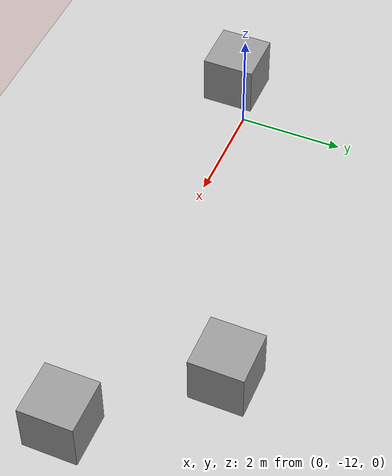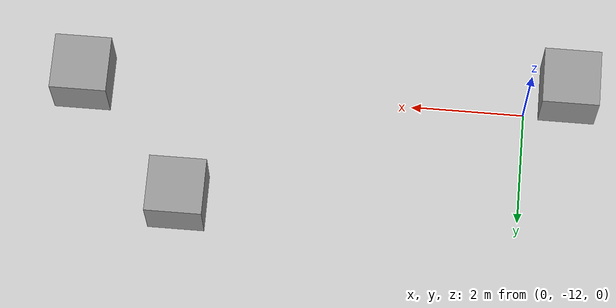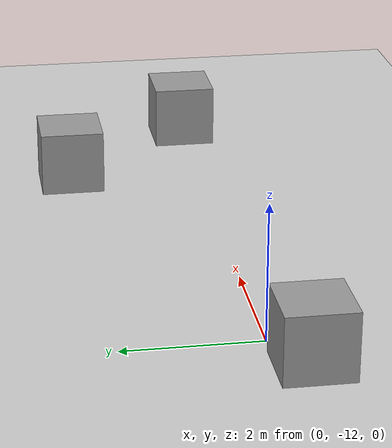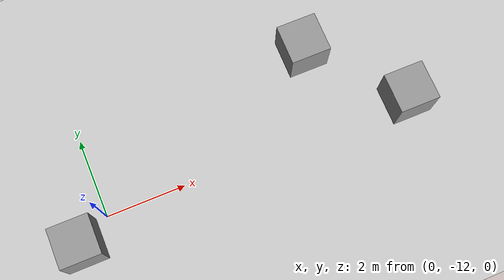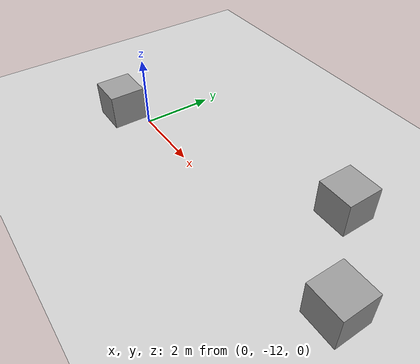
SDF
<sdf version="1.6">
 <world name="default">
  <model name="ground_plane">
   <static>1</static>
   <link name="link">
    <collision name="collision">
     <geometry><plane><normal>0 0 1</normal><size>100 100</size></plane></geometry>
     <surface>
      <contact><collide_bitmask>65535</collide_bitmask></contact>
      <friction><ode><mu>100</mu><mu2>50</mu2></ode></friction>
     </surface>
    </collision>
    <visual name="visual">
     <cast_shadows>0</cast_shadows>
     <geometry><plane><normal>0 0 1</normal><size>100 100</size></plane></geometry>
     <material>
      <script><uri>file://media/materials/scripts/gazebo.material</uri><name>Gazebo/Grey</name></script>
     </material>
    </visual>
   </link>
  </model>
  <model name="unit_box_0">
   <pose>-0.762825 -12.4538 0.499995 -1e-05 -0 -0</pose>
   <link name="link">
    <inertial>
     <mass>1</mass>
     <inertia>
      <ixx>0.166667</ixx>
      <ixy>0</ixy>
      <ixz>0</ixz>
      <iyy>0.166667</iyy>
      <iyz>0</iyz>
      <izz>0.166667</izz>
     </inertia>
    </inertial>
    <collision name="collision"><geometry><box><size>1 1 1</size></box></geometry></collision>
    <visual name="visual">
     <geometry><box><size>1 1 1</size></box></geometry>
     <material>
      <script><name>Gazebo/Grey</name><uri>file://media/materials/scripts/gazebo.material</uri></script>
     </material>
    </visual>
   </link>
  </model>
  <model name="unit_box_1">
   <pose>7.87551 -12.0199 0.499996 -9e-06 -0 -2e-06</pose>
   <link name="link">
    <inertial>
     <mass>1</mass>
     <inertia>
      <ixx>0.166667</ixx>
      <ixy>0</ixy>
      <ixz>0</ixz>
      <iyy>0.166667</iyy>
      <iyz>0</iyz>
      <izz>0.166667</izz>
     </inertia>
    </inertial>
    <collision name="collision"><geometry><box><size>1 1 1</size></box></geometry></collision>
    <visual name="visual">
     <geometry><box><size>1 1 1</size></box></geometry>
     <material>
      <script><name>Gazebo/Grey</name><uri>file://media/materials/scripts/gazebo.material</uri></script>
     </material>
    </visual>
   </link>
  </model>
  <model name="unit_box_2">
   <pose>5.98105 -9.90667 0.499995 -1e-05 -0 0</pose>
   <link name="link">
    <inertial>
     <mass>1</mass>
     <inertia>
      <ixx>0.166667</ixx>
      <ixy>0</ixy>
      <ixz>0</ixz>
      <iyy>0.166667</iyy>
      <iyz>0</iyz>
      <izz>0.166667</izz>
     </inertia>
    </inertial>
    <collision name="collision"><geometry><box><size>1 1 1</size></box></geometry></collision>
    <visual name="visual">
     <geometry><box><size>1 1 1</size></box></geometry>
     <material>
      <script><name>Gazebo/Grey</name><uri>file://media/materials/scripts/gazebo.material</uri></script>
     </material>
    </visual>
   </link>
  </model>
 </world>
</sdf>
